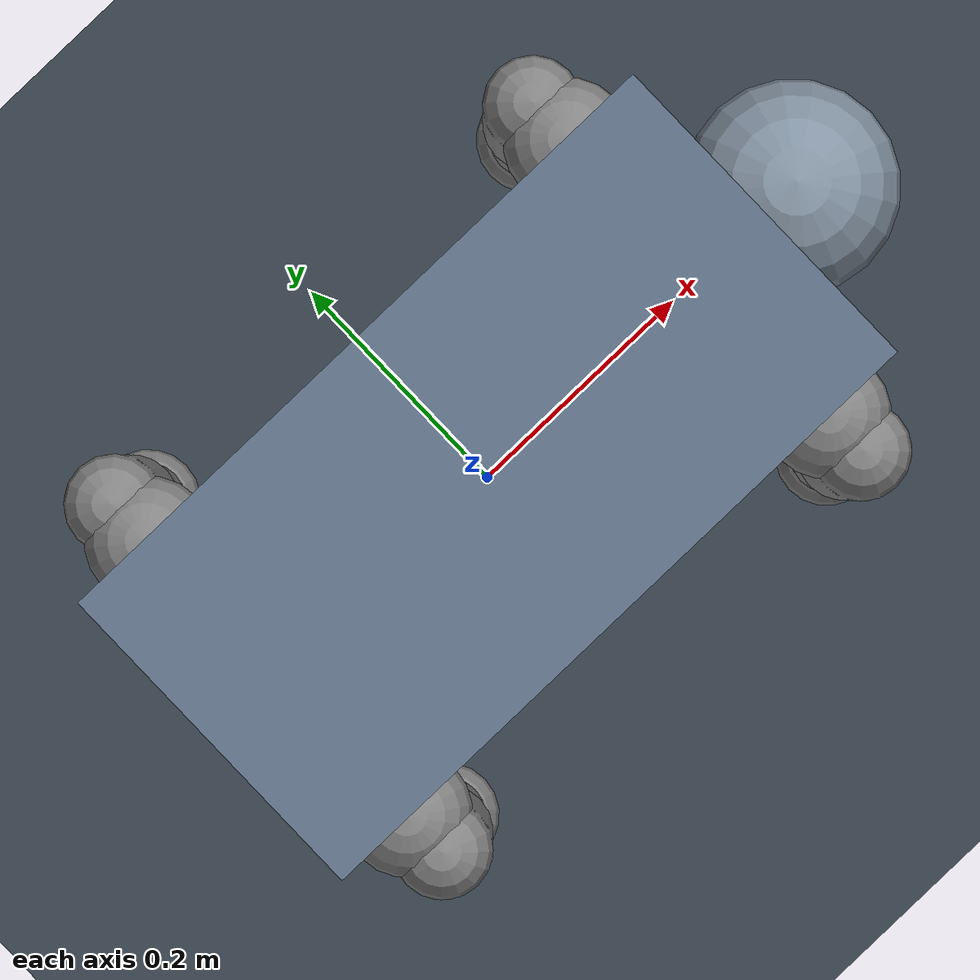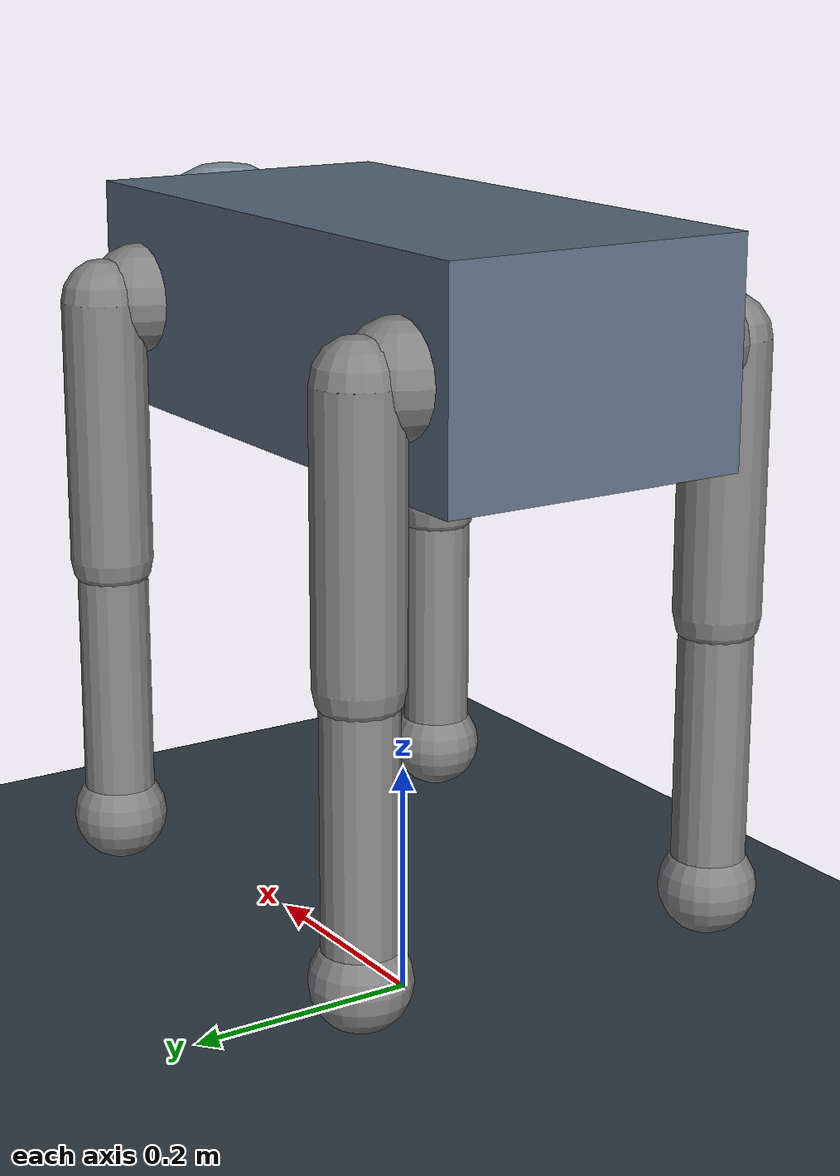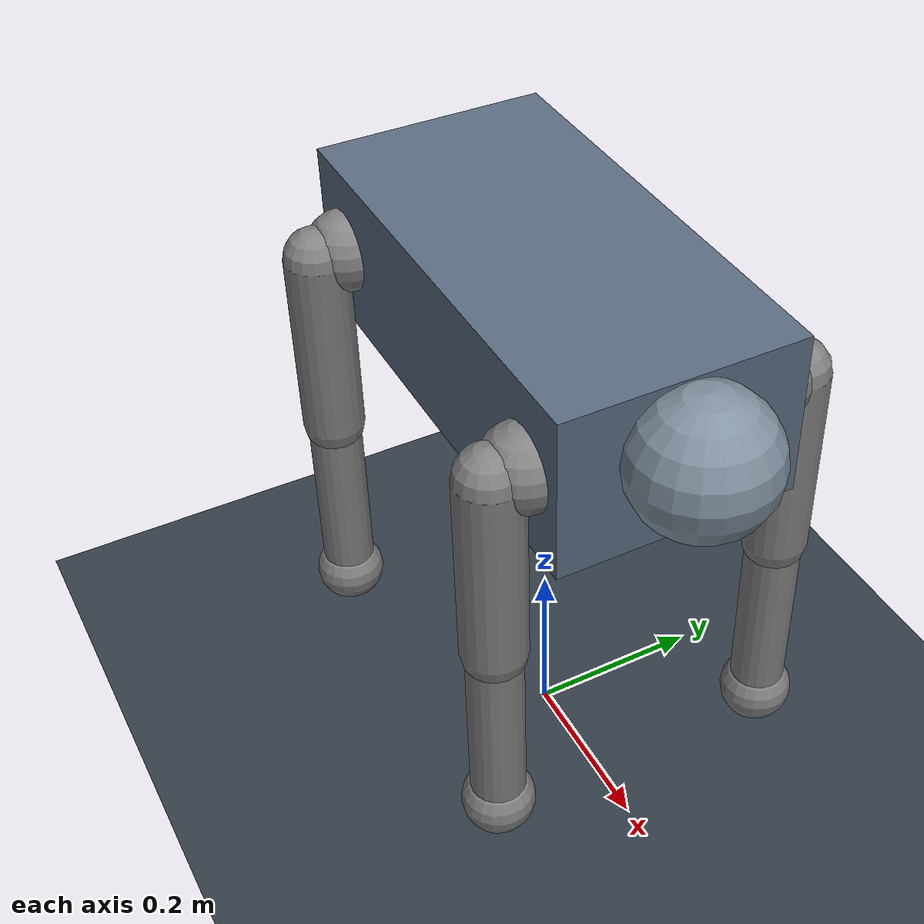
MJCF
<mujoco model="minimal-quadruped-v1">
  <compiler angle="radian" autolimits="true"/>
  <option timestep="0.002" gravity="0 0 -9.81" integrator="implicitfast"/>
  <default>
    <joint damping="1.2" armature="0.02" limited="true"/>
    <geom friction="0.9 0.1 0.01" density="700" condim="3"/>
    <position kp="45" kv="4" ctrlrange="-1.5 1.5"/>
  </default>
  <worldbody>
    <geom name="flat-ground-v1-floor" pos="0 0 0" type="plane" size="10 10 0.1"
      friction="0.9 0.1 0.01" condim="3" solref="0.02 1" solimp="0.9 0.95 0.001"
      rgba="0.2 0.24 0.28 1"/>
    <body name="trunk" pos="0 0 0.58">
      <freejoint name="root"/>
      <geom name="trunk_collision" type="box" size="0.26 0.13 0.09" mass="7" rgba="0.35 0.42 0.5 1"/>
        <geom name="head_collision" type="sphere" pos="0.29 0 0.02" size="0.075" mass="0.4" rgba="0.5 0.56 0.62 1"/>
      <body name="front_left_hip" pos="0.2 0.13 0">
        <joint name="front_left_hip_abduction" axis="1 0 0" range="-0.6 0.6"/>
        <geom name="front_left_hip_collision" type="sphere" size="0.045" mass="0.25"/>
        <body name="front_left_thigh" pos="0 0.035 0">
          <joint name="front_left_hip_flexion" axis="0 1 0" range="-1.4 1.4"/>
          <geom name="front_left_thigh_collision" type="capsule" fromto="0 0 0 0 0 -0.22" size="0.035" mass="0.7"/>
          <body name="front_left_shin" pos="0 0 -0.22">
            <joint name="front_left_knee" axis="0 1 0" range="-2.2 0.1"/>
            <geom name="front_left_calf_collision" type="capsule" fromto="0 0 0 0 0 -0.22" size="0.03" mass="0.55"/>
            <geom name="front_left_foot" type="sphere" pos="0 0 -0.23" size="0.04" mass="0.12"/>
          </body>
        </body>
      </body>
      <body name="front_right_hip" pos="0.2 -0.13 0">
        <joint name="front_right_hip_abduction" axis="1 0 0" range="-0.6 0.6"/>
        <geom name="front_right_hip_collision" type="sphere" size="0.045" mass="0.25"/>
        <body name="front_right_thigh" pos="0 -0.035 0">
          <joint name="front_right_hip_flexion" axis="0 1 0" range="-1.4 1.4"/>
          <geom name="front_right_thigh_collision" type="capsule" fromto="0 0 0 0 0 -0.22" size="0.035" mass="0.7"/>
          <body name="front_right_shin" pos="0 0 -0.22">
            <joint name="front_right_knee" axis="0 1 0" range="-2.2 0.1"/>
            <geom name="front_right_calf_collision" type="capsule" fromto="0 0 0 0 0 -0.22" size="0.03" mass="0.55"/>
            <geom name="front_right_foot" type="sphere" pos="0 0 -0.23" size="0.04" mass="0.12"/>
          </body>
        </body>
      </body>
      <body name="rear_left_hip" pos="-0.2 0.13 0">
        <joint name="rear_left_hip_abduction" axis="1 0 0" range="-0.6 0.6"/>
        <geom name="rear_left_hip_collision" type="sphere" size="0.045" mass="0.25"/>
        <body name="rear_left_thigh" pos="0 0.035 0">
          <joint name="rear_left_hip_flexion" axis="0 1 0" range="-1.4 1.4"/>
          <geom name="rear_left_thigh_collision" type="capsule" fromto="0 0 0 0 0 -0.22" size="0.035" mass="0.7"/>
          <body name="rear_left_shin" pos="0 0 -0.22">
            <joint name="rear_left_knee" axis="0 1 0" range="-2.2 0.1"/>
            <geom name="rear_left_calf_collision" type="capsule" fromto="0 0 0 0 0 -0.22" size="0.03" mass="0.55"/>
            <geom name="rear_left_foot" type="sphere" pos="0 0 -0.23" size="0.04" mass="0.12"/>
          </body>
        </body>
      </body>
      <body name="rear_right_hip" pos="-0.2 -0.13 0">
        <joint name="rear_right_hip_abduction" axis="1 0 0" range="-0.6 0.6"/>
        <geom name="rear_right_hip_collision" type="sphere" size="0.045" mass="0.25"/>
        <body name="rear_right_thigh" pos="0 -0.035 0">
          <joint name="rear_right_hip_flexion" axis="0 1 0" range="-1.4 1.4"/>
          <geom name="rear_right_thigh_collision" type="capsule" fromto="0 0 0 0 0 -0.22" size="0.035" mass="0.7"/>
          <body name="rear_right_shin" pos="0 0 -0.22">
            <joint name="rear_right_knee" axis="0 1 0" range="-2.2 0.1"/>
            <geom name="rear_right_calf_collision" type="capsule" fromto="0 0 0 0 0 -0.22" size="0.03" mass="0.55"/>
            <geom name="rear_right_foot" type="sphere" pos="0 0 -0.23" size="0.04" mass="0.12"/>
          </body>
        </body>
      </body>
    </body>
  </worldbody>
  <actuator>
    <position name="front_left_hip_abduction_motor" joint="front_left_hip_abduction"/>
    <position name="front_left_hip_flexion_motor" joint="front_left_hip_flexion" ctrlrange="-1.4 1.4"/>
    <position name="front_left_knee_motor" joint="front_left_knee" ctrlrange="-2.2 0.1"/>
    <position name="front_right_hip_abduction_motor" joint="front_right_hip_abduction"/>
    <position name="front_right_hip_flexion_motor" joint="front_right_hip_flexion" ctrlrange="-1.4 1.4"/>
    <position name="front_right_knee_motor" joint="front_right_knee" ctrlrange="-2.2 0.1"/>
    <position name="rear_left_hip_abduction_motor" joint="rear_left_hip_abduction"/>
    <position name="rear_left_hip_flexion_motor" joint="rear_left_hip_flexion" ctrlrange="-1.4 1.4"/>
    <position name="rear_left_knee_motor" joint="rear_left_knee" ctrlrange="-2.2 0.1"/>
    <position name="rear_right_hip_abduction_motor" joint="rear_right_hip_abduction"/>
    <position name="rear_right_hip_flexion_motor" joint="rear_right_hip_flexion" ctrlrange="-1.4 1.4"/>
    <position name="rear_right_knee_motor" joint="rear_right_knee" ctrlrange="-2.2 0.1"/>
  </actuator>
  <keyframe>
    <key name="home" qpos="0 0 0.58 1 0 0 0 0 0.55 -1.1 0 0.55 -1.1 0 0.55 -1.1 0 0.55 -1.1" ctrl="0 0.55 -1.1 0 0.55 -1.1 0 0.55 -1.1 0 0.55 -1.1"/>
  </keyframe>
</mujoco>
